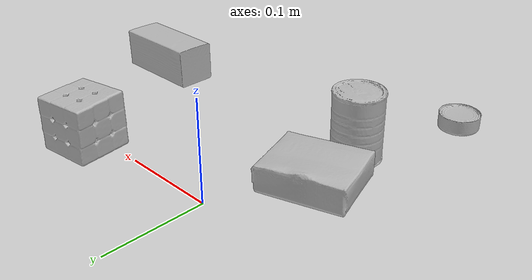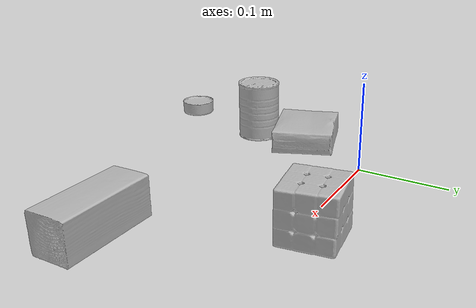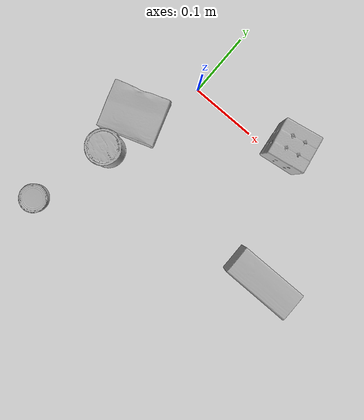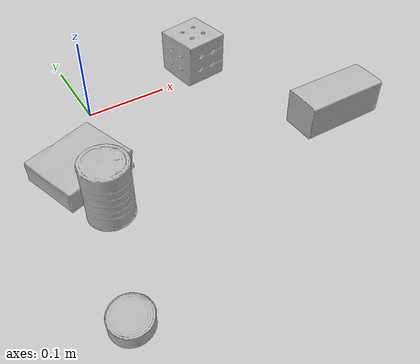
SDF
<sdf version="1.4">
  <world name="default">
    <light name="light1" type="point">
      <pose>0 0 1 0 0 0</pose>
      <diffuse>3 3 3 1</diffuse>
      <specular>3 3 3 1</specular>
    </light>
    <light name="light2" type="point">
      <pose>0 0.5 2 0 0 0</pose>
      <diffuse>1 1 1 1</diffuse>
      <specular>1 1 1 1</specular>
    </light>
    <light name="light3" type="point">
      <pose>0 0.5 2 0 0 0</pose>
      <diffuse>3 3 3 1</diffuse>
      <specular>3 3 3 1</specular>
    </light>
    <scene>
      <ambient>0.7 0.7 0.7</ambient>
    </scene>
    <model name="box1">
      <link name="link_box1">
        <collision name="default">
          <geometry>
            <mesh>
              <uri>model://rubiks_cube/collision_meshes/collision.obj</uri>
              <scale>1.0 1.0 1.0</scale>
            </mesh>
          </geometry>
          <surface>
            <friction>
              <ode>
                <mu>0.5</mu>
                <mu2>0.5</mu2>
              </ode>
            </friction>
          <contact>
        <ode>
            <max_vel>0</max_vel>
            <min_depth>0.0001</min_depth>
            <kp>1e8</kp>
        </ode>
    </contact></surface>
        </collision>
        <visual name="default">
          <geometry>
            <mesh>
              <uri>model://rubiks_cube/visual_meshes/visual.dae</uri>
              <scale>1.0 1.0 1.0</scale>
            </mesh>
          </geometry>
        </visual>
        <inertial>
          <mass>0.1675702929496765</mass>
          <pose>2.6721041649580002e-05 5.2569666877388954e-05 -7.264316082000732e-06 -0.054672410780645164 -0.09813946178663992 -0.034457105846518836</pose>
          <inertia>
            <ixx>9.259384e-05</ixx>
            <iyy>9.2162045e-05</iyy>
            <izz>9.336113e-05</izz>
            <ixy>0</ixy>
            <ixz>0</ixz>
            <iyz>0</iyz>
          </inertia>
        </inertial>
      </link>
      <pose>0.15580549836158752 0.01772243343293667 0.028678953647613525 -3.685617238469219e-06 -1.2356904392884105e-06 1.740884526152303</pose>
    </model>
    <model name="box2">
      <link name="link_box2">
        <collision name="default">
          <geometry>
            <mesh>
              <uri>model://wood_block/collision_meshes/collision.obj</uri>
              <scale>0.5 0.5 0.5</scale>
            </mesh>
          </geometry>
          <surface>
            <friction>
              <ode>
                <mu>0.5</mu>
                <mu2>0.5</mu2>
              </ode>
            </friction>
          <contact>
        <ode>
            <max_vel>0</max_vel>
            <min_depth>0.0001</min_depth>
            <kp>1e8</kp>
        </ode>
    </contact></surface>
        </collision>
        <visual name="default">
          <geometry>
            <mesh>
              <uri>model://wood_block/visual_meshes/visual.dae</uri>
              <scale>0.5 0.5 0.5</scale>
            </mesh>
          </geometry>
        </visual>
        <inertial>
          <mass>0.20594346523284912</mass>
          <pose>-2.9066577553749084e-06 -0.000285404734313488 0.00013204291462898254 -0.05220975528833662 -0.005192695571830849 -0.0068613788586691015</pose>
          <inertia>
            <ixx>6.8895875e-05</ixx>
            <iyy>0.0002176421</iyy>
            <izz>0.00021682802</izz>
            <ixy>0</ixy>
            <ixz>0</ixz>
            <iyz>0</iyz>
          </inertia>
        </inertial>
      </link>
      <pose>0.24844948947429657 -0.15367750823497772 0.022629261016845703 -0.005208483715781145 0.005718735363836859 0.0028293821822496738</pose>
    </model>
    <model name="box3">
      <link name="link_box3">
        <collision name="default">
          <geometry>
            <mesh>
              <uri>model://gelatin_box/collision_meshes/collision.obj</uri>
              <scale>1.0 1.0 1.0</scale>
            </mesh>
          </geometry>
          <surface>
            <friction>
              <ode>
                <mu>0.5</mu>
                <mu2>0.5</mu2>
              </ode>
            </friction>
          <contact>
        <ode>
            <max_vel>0</max_vel>
            <min_depth>0.0001</min_depth>
            <kp>1e8</kp>
        </ode>
    </contact></surface>
        </collision>
        <visual name="default">
          <geometry>
            <mesh>
              <uri>model://gelatin_box/visual_meshes/visual.dae</uri>
              <scale>1.0 1.0 1.0</scale>
            </mesh>
          </geometry>
        </visual>
        <inertial>
          <mass>0.27371785044670105</mass>
          <pose>0.0004319618456065655 0.00011156871914863586 -0.0003640321083366871 -0.0010503717367230932 -0.004755817294347581 0.01644056133308036</pose>
          <inertia>
            <ixx>0.00019322247</ixx>
            <iyy>0.00013801781</iyy>
            <izz>0.00029412765</izz>
            <ixy>0</ixy>
            <ixz>0</ixz>
            <iyz>0</iyz>
          </inertia>
        </inertial>
      </link>
      <pose>-0.04634016752243042 -0.08950524032115936 0.015168314799666405 0.00559733904122477 -0.007304414046329398 1.8870236409049992</pose>
    </model>
    <model name="can1">
      <link name="link_can1">
        <collision name="default">
          <geometry>
            <mesh>
              <uri>model://master_chef_can/collision_meshes/collision.obj</uri>
              <scale>0.5 0.5 0.5</scale>
            </mesh>
          </geometry>
          <surface>
            <friction>
              <ode>
                <mu>0.5</mu>
                <mu2>0.5</mu2>
              </ode>
            </friction>
          <contact>
        <ode>
            <max_vel>0</max_vel>
            <min_depth>0.0001</min_depth>
            <kp>1e8</kp>
        </ode>
    </contact></surface>
        </collision>
        <visual name="default">
          <geometry>
            <mesh>
              <uri>model://master_chef_can/visual_meshes/visual.dae</uri>
              <scale>0.5 0.5 0.5</scale>
            </mesh>
          </geometry>
        </visual>
        <inertial>
          <mass>0.18439537286758423</mass>
          <pose>-4.6619643399026245e-05 1.3926847941547749e-07 -5.080040136817843e-05 -0.0017995053130472594 0.0006479450382529565 -0.6102509153361354</pose>
          <inertia>
            <ixx>0.00010822757</ixx>
            <iyy>0.00010743104</iyy>
            <izz>5.9804017e-05</izz>
            <ixy>0</ixy>
            <ixz>0</ixz>
            <iyz>0</iyz>
          </inertia>
        </inertial>
      </link>
      <pose>-0.041547439992427826 -0.15428079664707184 0.03530200943350792 -1.5959438854280518e-06 -7.303451198392748e-07 0.17623928469607417</pose>
    </model>
    <model name="can2">
      <link name="link_can2">
        <collision name="default">
          <geometry>
            <mesh>
              <uri>model://tuna_fish_can/collision_meshes/collision.obj</uri>
              <scale>0.5 0.5 0.5</scale>
            </mesh>
          </geometry>
          <surface>
            <friction>
              <ode>
                <mu>0.5</mu>
                <mu2>0.5</mu2>
              </ode>
            </friction>
          <contact>
        <ode>
            <max_vel>0</max_vel>
            <min_depth>0.0001</min_depth>
            <kp>1e8</kp>
        </ode>
    </contact></surface>
        </collision>
        <visual name="default">
          <geometry>
            <mesh>
              <uri>model://tuna_fish_can/visual_meshes/visual.dae</uri>
              <scale>0.5 0.5 0.5</scale>
            </mesh>
          </geometry>
        </visual>
        <inertial>
          <mass>0.02825223281979561</mass>
          <pose>-2.0362142095109448e-05 -7.256046956172213e-06 -0.0005269023240543902 -0.0017944745775900258 0.00017164550693472895 0.24055441971144348</pose>
          <inertia>
            <ixx>3.819744e-06</ixx>
            <iyy>3.803824e-06</iyy>
            <izz>6.536128e-06</izz>
            <ixy>0</ixy>
            <ixz>0</ixz>
            <iyz>0</iyz>
          </inertia>
        </inertial>
      </link>
      <pose>-0.07837595045566559 -0.277237206697464 0.008520001545548439 6.9886530332100046e-09 -8.85667585345055e-09 2.473061875675234</pose>
    </model>
  <physics type="ode">
      <max_contacts>50</max_contacts>
      <ode>
        <solver>
          <type>quick</type>
          <iters>75</iters>
        </solver>
        <constraints>
          <contact_max_correcting_vel>0</contact_max_correcting_vel>
          <contact_surface_layer>0</contact_surface_layer>
        </constraints>
      </ode>
    </physics></world>
</sdf>
